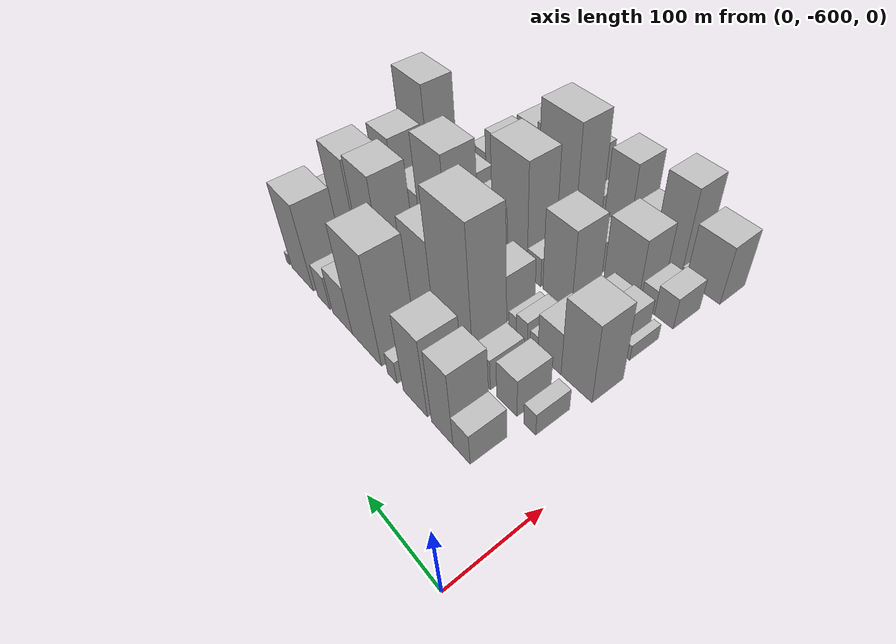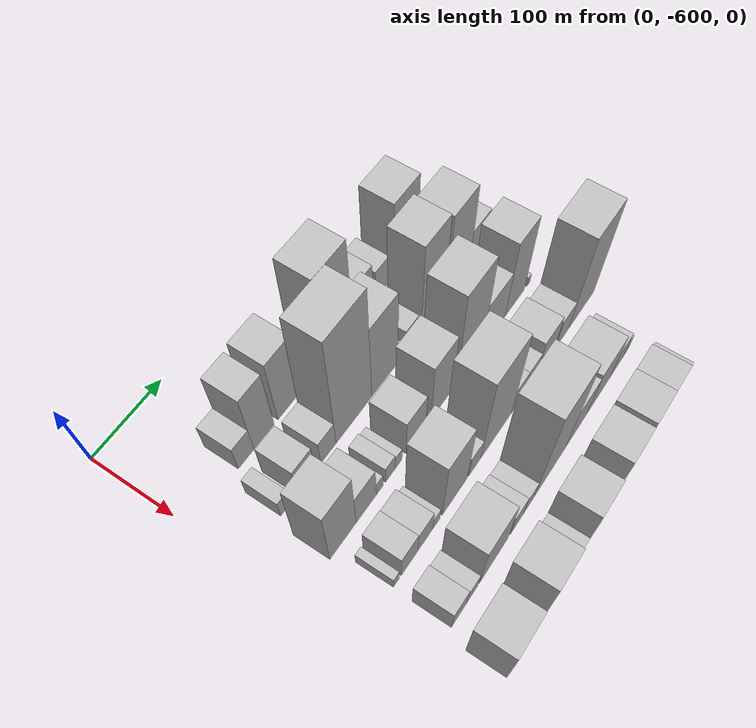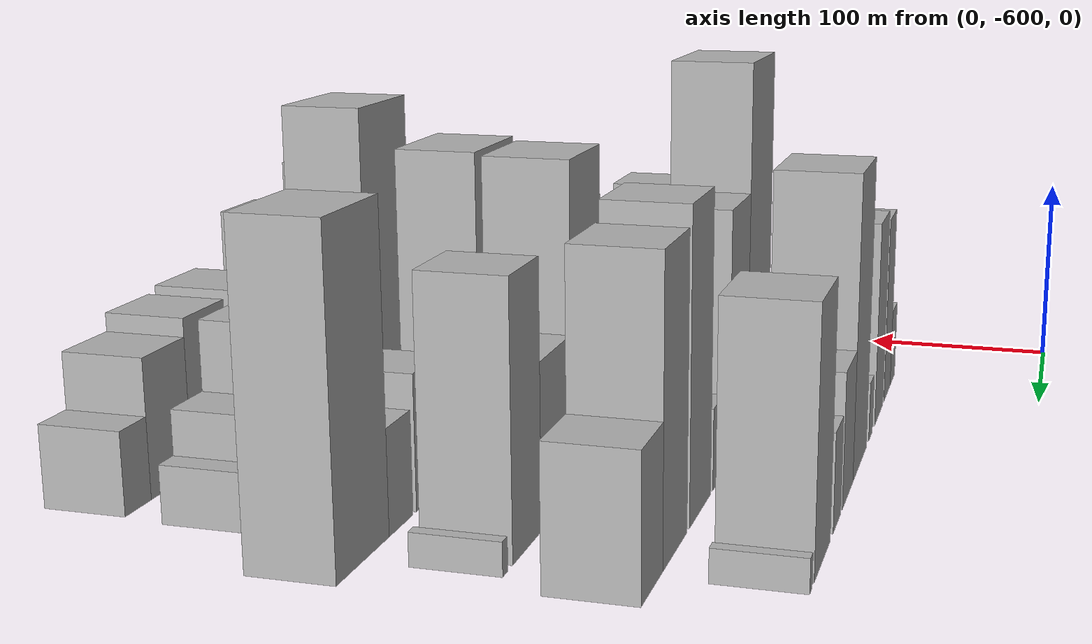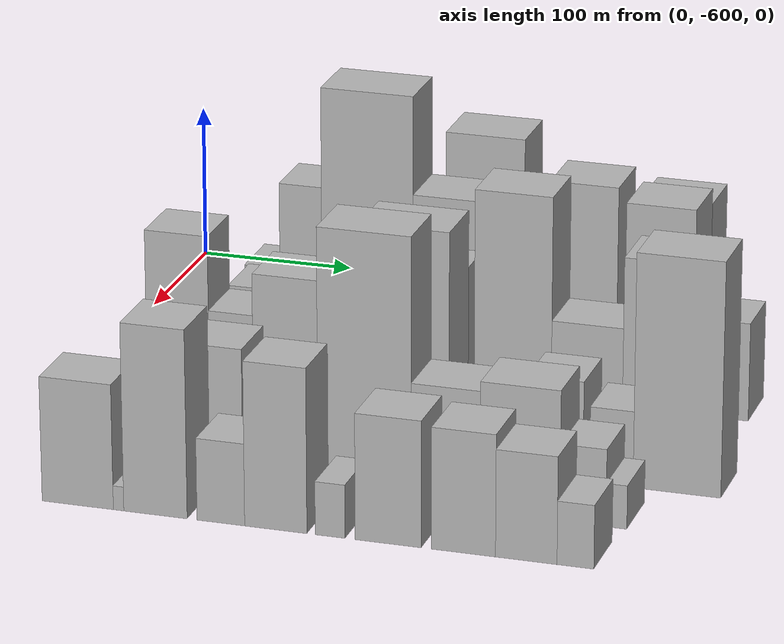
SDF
<sdf version="1.6">
 <world name="default">
  <model name="building_11">
   <static>1</static>
   <pose>100.0000 -520.0015 0 0.000000 0.000000 0.000000</pose>
   <link name="link">
    <pose>0 0 21.00 0 0 0</pose>
    <collision name="collision"><geometry><box><size>40.0000 23.5197 42.0000</size></box></geometry></collision>
    <visual name="visual">
     <cast_shadows>0</cast_shadows>
     <geometry><box><size>40.0000 23.5197 42.0000</size></box></geometry>
     <material>
      <script>
       <uri>model://HANNAS_wall/materials/scripts</uri>
       <uri>model://HANNAS_wall/materials/textures</uri>
       <name>vrc/HANNAS_wall</name>
      </script>
     </material>
    </visual>
   </link>
  </model>
  <model name="building_12">
   <static>1</static>
   <pose>100.0000 -492.8149 0 0.000000 0.000000 0.000000</pose>
   <link name="link">
    <pose>0 0 49.50 0 0 0</pose>
    <collision name="collision"><geometry><box><size>40.0000 30.8535 99.0000</size></box></geometry></collision>
    <visual name="visual">
     <cast_shadows>0</cast_shadows>
     <geometry><box><size>40.0000 30.8535 99.0000</size></box></geometry>
     <material>
      <script>
       <uri>model://HANNAS_wall/materials/scripts</uri>
       <uri>model://HANNAS_wall/materials/textures</uri>
       <name>vrc/HANNAS_wall</name>
      </script>
     </material>
    </visual>
   </link>
  </model>
  <model name="building_13">
   <static>1</static>
   <pose>100.0000 -452.9335 0 0.000000 0.000000 0.000000</pose>
   <link name="link">
    <pose>0 0 52.50 0 0 0</pose>
    <collision name="collision"><geometry><box><size>40.0000 36.9093 105.0000</size></box></geometry></collision>
    <visual name="visual">
     <cast_shadows>0</cast_shadows>
     <geometry><box><size>40.0000 36.9093 105.0000</size></box></geometry>
     <material>
      <script>
       <uri>model://HANNAS_wall/materials/scripts</uri>
       <uri>model://HANNAS_wall/materials/textures</uri>
       <name>vrc/HANNAS_wall</name>
      </script>
     </material>
    </visual>
   </link>
  </model>
  <model name="building_14">
   <static>1</static>
   <pose>100.0000 -416.7307 0 0.000000 0.000000 0.000000</pose>
   <link name="link">
    <pose>0 0 15.00 0 0 0</pose>
    <collision name="collision"><geometry><box><size>40.0000 15.4963 30.0000</size></box></geometry></collision>
    <visual name="visual">
     <cast_shadows>0</cast_shadows>
     <geometry><box><size>40.0000 15.4963 30.0000</size></box></geometry>
     <material>
      <script>
       <uri>model://HANNAS_wall/materials/scripts</uri>
       <uri>model://HANNAS_wall/materials/textures</uri>
       <name>vrc/HANNAS_wall</name>
      </script>
     </material>
    </visual>
   </link>
  </model>
  <model name="building_15">
   <static>1</static>
   <pose>100.0000 -373.5978 0 0.000000 0.000000 0.000000</pose>
   <link name="link">
    <pose>0 0 72.00 0 0 0</pose>
    <collision name="collision"><geometry><box><size>40.0000 50.7695 144.0000</size></box></geometry></collision>
    <visual name="visual">
     <cast_shadows>0</cast_shadows>
     <geometry><box><size>40.0000 50.7695 144.0000</size></box></geometry>
     <material>
      <script>
       <uri>model://HANNAS_wall/materials/scripts</uri>
       <uri>model://HANNAS_wall/materials/textures</uri>
       <name>vrc/HANNAS_wall</name>
      </script>
     </material>
    </visual>
   </link>
  </model>
  <model name="building_16">
   <static>1</static>
   <pose>100.0000 -330.0383 0 0.000000 0.000000 0.000000</pose>
   <link name="link">
    <pose>0 0 31.50 0 0 0</pose>
    <collision name="collision"><geometry><box><size>40.0000 36.3495 63.0000</size></box></geometry></collision>
    <visual name="visual">
     <cast_shadows>0</cast_shadows>
     <geometry><box><size>40.0000 36.3495 63.0000</size></box></geometry>
     <material>
      <script>
       <uri>model://HANNAS_wall/materials/scripts</uri>
       <uri>model://HANNAS_wall/materials/textures</uri>
       <name>vrc/HANNAS_wall</name>
      </script>
     </material>
    </visual>
   </link>
  </model>
  <model name="building_17">
   <static>1</static>
   <pose>100.0000 -294.9003 0 0.000000 0.000000 0.000000</pose>
   <link name="link">
    <pose>0 0 22.50 0 0 0</pose>
    <collision name="collision"><geometry><box><size>40.0000 23.9264 45.0000</size></box></geometry></collision>
    <visual name="visual">
     <cast_shadows>0</cast_shadows>
     <geometry><box><size>40.0000 23.9264 45.0000</size></box></geometry>
     <material>
      <script>
       <uri>model://HANNAS_wall/materials/scripts</uri>
       <uri>model://HANNAS_wall/materials/textures</uri>
       <name>vrc/HANNAS_wall</name>
      </script>
     </material>
    </visual>
   </link>
  </model>
  <model name="building_18">
   <static>1</static>
   <pose>100.0000 -251.7441 0 0.000000 0.000000 0.000000</pose>
   <link name="link">
    <pose>0 0 57.00 0 0 0</pose>
    <collision name="collision"><geometry><box><size>40.0000 44.3859 114.0000</size></box></geometry></collision>
    <visual name="visual">
     <cast_shadows>0</cast_shadows>
     <geometry><box><size>40.0000 44.3859 114.0000</size></box></geometry>
     <material>
      <script>
       <uri>model://HANNAS_wall/materials/scripts</uri>
       <uri>model://HANNAS_wall/materials/textures</uri>
       <name>vrc/HANNAS_wall</name>
      </script>
     </material>
    </visual>
   </link>
  </model>
  <model name="building_19">
   <static>1</static>
   <pose>100.0000 -221.4187 0 0.000000 0.000000 0.000000</pose>
   <link name="link">
    <pose>0 0 7.50 0 0 0</pose>
    <collision name="collision"><geometry><box><size>40.0000 6.2650 15.0000</size></box></geometry></collision>
    <visual name="visual">
     <cast_shadows>0</cast_shadows>
     <geometry><box><size>40.0000 6.2650 15.0000</size></box></geometry>
     <material>
      <script>
       <uri>model://HANNAS_wall/materials/scripts</uri>
       <uri>model://HANNAS_wall/materials/textures</uri>
       <name>vrc/HANNAS_wall</name>
      </script>
     </material>
    </visual>
   </link>
  </model>
  <model name="building_62">
   <static>1</static>
   <pose>160.0000 -538.5792 0 0.000000 0.000000 0.000000</pose>
   <link name="link">
    <pose>0 0 15.00 0 0 0</pose>
    <collision name="collision"><geometry><box><size>40.0000 15.5419 30.0000</size></box></geometry></collision>
    <visual name="visual">
     <cast_shadows>0</cast_shadows>
     <geometry><box><size>40.0000 15.5419 30.0000</size></box></geometry>
     <material>
      <script>
       <uri>model://HANNAS_wall/materials/scripts</uri>
       <uri>model://HANNAS_wall/materials/textures</uri>
       <name>vrc/HANNAS_wall</name>
      </script>
     </material>
    </visual>
   </link>
  </model>
  <model name="building_63">
   <static>1</static>
   <pose>160.0000 -507.8582 0 0.000000 0.000000 0.000000</pose>
   <link name="link">
    <pose>0 0 25.50 0 0 0</pose>
    <collision name="collision"><geometry><box><size>40.0000 27.9001 51.0000</size></box></geometry></collision>
    <visual name="visual">
     <cast_shadows>0</cast_shadows>
     <geometry><box><size>40.0000 27.9001 51.0000</size></box></geometry>
     <material>
      <script>
       <uri>model://HANNAS_wall/materials/scripts</uri>
       <uri>model://HANNAS_wall/materials/textures</uri>
       <name>vrc/HANNAS_wall</name>
      </script>
     </material>
    </visual>
   </link>
  </model>
  <model name="building_64">
   <static>1</static>
   <pose>160.0000 -472.8060 0 0.000000 0.000000 0.000000</pose>
   <link name="link">
    <pose>0 0 21.00 0 0 0</pose>
    <collision name="collision"><geometry><box><size>40.0000 24.2043 42.0000</size></box></geometry></collision>
    <visual name="visual">
     <cast_shadows>0</cast_shadows>
     <geometry><box><size>40.0000 24.2043 42.0000</size></box></geometry>
     <material>
      <script>
       <uri>model://HANNAS_wall/materials/scripts</uri>
       <uri>model://HANNAS_wall/materials/textures</uri>
       <name>vrc/HANNAS_wall</name>
      </script>
     </material>
    </visual>
   </link>
  </model>
  <model name="building_65">
   <static>1</static>
   <pose>160.0000 -431.2736 0 0.000000 0.000000 0.000000</pose>
   <link name="link">
    <pose>0 0 93.00 0 0 0</pose>
    <collision name="collision"><geometry><box><size>40.0000 58.8605 186.0000</size></box></geometry></collision>
    <visual name="visual">
     <cast_shadows>0</cast_shadows>
     <geometry><box><size>40.0000 58.8605 186.0000</size></box></geometry>
     <material>
      <script>
       <uri>model://HANNAS_wall/materials/scripts</uri>
       <uri>model://HANNAS_wall/materials/textures</uri>
       <name>vrc/HANNAS_wall</name>
      </script>
     </material>
    </visual>
   </link>
  </model>
  <model name="building_66">
   <static>1</static>
   <pose>160.0000 -379.3905 0 0.000000 0.000000 0.000000</pose>
   <link name="link">
    <pose>0 0 61.50 0 0 0</pose>
    <collision name="collision"><geometry><box><size>40.0000 44.9057 123.0000</size></box></geometry></collision>
    <visual name="visual">
     <cast_shadows>0</cast_shadows>
     <geometry><box><size>40.0000 44.9057 123.0000</size></box></geometry>
     <material>
      <script>
       <uri>model://HANNAS_wall/materials/scripts</uri>
       <uri>model://HANNAS_wall/materials/textures</uri>
       <name>vrc/HANNAS_wall</name>
      </script>
     </material>
    </visual>
   </link>
  </model>
  <model name="building_67">
   <static>1</static>
   <pose>160.0000 -352.0863 0 0.000000 0.000000 0.000000</pose>
   <link name="link">
    <pose>0 0 12.00 0 0 0</pose>
    <collision name="collision"><geometry><box><size>40.0000 9.7026 24.0000</size></box></geometry></collision>
    <visual name="visual">
     <cast_shadows>0</cast_shadows>
     <geometry><box><size>40.0000 9.7026 24.0000</size></box></geometry>
     <material>
      <script>
       <uri>model://HANNAS_wall/materials/scripts</uri>
       <uri>model://HANNAS_wall/materials/textures</uri>
       <name>vrc/HANNAS_wall</name>
      </script>
     </material>
    </visual>
   </link>
  </model>
  <model name="building_68">
   <static>1</static>
   <pose>160.0000 -331.8195 0 0.000000 0.000000 0.000000</pose>
   <link name="link">
    <pose>0 0 19.50 0 0 0</pose>
    <collision name="collision"><geometry><box><size>40.0000 22.8311 39.0000</size></box></geometry></collision>
    <visual name="visual">
     <cast_shadows>0</cast_shadows>
     <geometry><box><size>40.0000 22.8311 39.0000</size></box></geometry>
     <material>
      <script>
       <uri>model://HANNAS_wall/materials/scripts</uri>
       <uri>model://HANNAS_wall/materials/textures</uri>
       <name>vrc/HANNAS_wall</name>
      </script>
     </material>
    </visual>
   </link>
  </model>
  <model name="building_69">
   <static>1</static>
   <pose>160.0000 -294.0380 0 0.000000 0.000000 0.000000</pose>
   <link name="link">
    <pose>0 0 70.50 0 0 0</pose>
    <collision name="collision"><geometry><box><size>40.0000 42.7319 141.0000</size></box></geometry></collision>
    <visual name="visual">
     <cast_shadows>0</cast_shadows>
     <geometry><box><size>40.0000 42.7319 141.0000</size></box></geometry>
     <material>
      <script>
       <uri>model://HANNAS_wall/materials/scripts</uri>
       <uri>model://HANNAS_wall/materials/textures</uri>
       <name>vrc/HANNAS_wall</name>
      </script>
     </material>
    </visual>
   </link>
  </model>
  <model name="building_70">
   <static>1</static>
   <pose>160.0000 -246.0291 0 0.000000 0.000000 0.000000</pose>
   <link name="link">
    <pose>0 0 66.00 0 0 0</pose>
    <collision name="collision"><geometry><box><size>40.0000 43.2858 132.0000</size></box></geometry></collision>
    <visual name="visual">
     <cast_shadows>0</cast_shadows>
     <geometry><box><size>40.0000 43.2858 132.0000</size></box></geometry>
     <material>
      <script>
       <uri>model://HANNAS_wall/materials/scripts</uri>
       <uri>model://HANNAS_wall/materials/textures</uri>
       <name>vrc/HANNAS_wall</name>
      </script>
     </material>
    </visual>
   </link>
  </model>
  <model name="building_71">
   <static>1</static>
   <pose>160.0000 -207.0474 0 0.000000 0.000000 0.000000</pose>
   <link name="link">
    <pose>0 0 31.50 0 0 0</pose>
    <collision name="collision"><geometry><box><size>40.0000 34.6776 63.0000</size></box></geometry></collision>
    <visual name="visual">
     <cast_shadows>0</cast_shadows>
     <geometry><box><size>40.0000 34.6776 63.0000</size></box></geometry>
     <material>
      <script>
       <uri>model://HANNAS_wall/materials/scripts</uri>
       <uri>model://HANNAS_wall/materials/textures</uri>
       <name>vrc/HANNAS_wall</name>
      </script>
     </material>
    </visual>
   </link>
  </model>
  <model name="building_114">
   <static>1</static>
   <pose>220.0000 -534.1044 0 0.000000 0.000000 0.000000</pose>
   <link name="link">
    <pose>0 0 52.50 0 0 0</pose>
    <collision name="collision"><geometry><box><size>40.0000 40.4031 105.0000</size></box></geometry></collision>
    <visual name="visual">
     <cast_shadows>0</cast_shadows>
     <geometry><box><size>40.0000 40.4031 105.0000</size></box></geometry>
     <material>
      <script>
       <uri>model://HANNAS_wall/materials/scripts</uri>
       <uri>model://HANNAS_wall/materials/textures</uri>
       <name>vrc/HANNAS_wall</name>
      </script>
     </material>
    </visual>
   </link>
  </model>
  <model name="building_115">
   <static>1</static>
   <pose>220.0000 -498.0451 0 0.000000 0.000000 0.000000</pose>
   <link name="link">
    <pose>0 0 28.50 0 0 0</pose>
    <collision name="collision"><geometry><box><size>40.0000 31.7157 57.0000</size></box></geometry></collision>
    <visual name="visual">
     <cast_shadows>0</cast_shadows>
     <geometry><box><size>40.0000 31.7157 57.0000</size></box></geometry>
     <material>
      <script>
       <uri>model://HANNAS_wall/materials/scripts</uri>
       <uri>model://HANNAS_wall/materials/textures</uri>
       <name>vrc/HANNAS_wall</name>
      </script>
     </material>
    </visual>
   </link>
  </model>
  <model name="building_116">
   <static>1</static>
   <pose>220.0000 -476.6513 0 0.000000 0.000000 0.000000</pose>
   <link name="link">
    <pose>0 0 12.00 0 0 0</pose>
    <collision name="collision"><geometry><box><size>40.0000 11.0718 24.0000</size></box></geometry></collision>
    <visual name="visual">
     <cast_shadows>0</cast_shadows>
     <geometry><box><size>40.0000 11.0718 24.0000</size></box></geometry>
     <material>
      <script>
       <uri>model://HANNAS_wall/materials/scripts</uri>
       <uri>model://HANNAS_wall/materials/textures</uri>
       <name>vrc/HANNAS_wall</name>
      </script>
     </material>
    </visual>
   </link>
  </model>
  <model name="building_117">
   <static>1</static>
   <pose>220.0000 -459.2094 0 0.000000 0.000000 0.000000</pose>
   <link name="link">
    <pose>0 0 15.00 0 0 0</pose>
    <collision name="collision"><geometry><box><size>40.0000 15.8121 30.0000</size></box></geometry></collision>
    <visual name="visual">
     <cast_shadows>0</cast_shadows>
     <geometry><box><size>40.0000 15.8121 30.0000</size></box></geometry>
     <material>
      <script>
       <uri>model://HANNAS_wall/materials/scripts</uri>
       <uri>model://HANNAS_wall/materials/textures</uri>
       <name>vrc/HANNAS_wall</name>
      </script>
     </material>
    </visual>
   </link>
  </model>
  <model name="building_118">
   <static>1</static>
   <pose>220.0000 -445.6467 0 0.000000 0.000000 0.000000</pose>
   <link name="link">
    <pose>0 0 12.00 0 0 0</pose>
    <collision name="collision"><geometry><box><size>40.0000 11.3134 24.0000</size></box></geometry></collision>
    <visual name="visual">
     <cast_shadows>0</cast_shadows>
     <geometry><box><size>40.0000 11.3134 24.0000</size></box></geometry>
     <material>
      <script>
       <uri>model://HANNAS_wall/materials/scripts</uri>
       <uri>model://HANNAS_wall/materials/textures</uri>
       <name>vrc/HANNAS_wall</name>
      </script>
     </material>
    </visual>
   </link>
  </model>
  <model name="building_119">
   <static>1</static>
   <pose>220.0000 -416.3813 0 0.000000 0.000000 0.000000</pose>
   <link name="link">
    <pose>0 0 31.50 0 0 0</pose>
    <collision name="collision"><geometry><box><size>40.0000 33.2174 63.0000</size></box></geometry></collision>
    <visual name="visual">
     <cast_shadows>0</cast_shadows>
     <geometry><box><size>40.0000 33.2174 63.0000</size></box></geometry>
     <material>
      <script>
       <uri>model://HANNAS_wall/materials/scripts</uri>
       <uri>model://HANNAS_wall/materials/textures</uri>
       <name>vrc/HANNAS_wall</name>
      </script>
     </material>
    </visual>
   </link>
  </model>
  <model name="building_120">
   <static>1</static>
   <pose>220.0000 -371.4039 0 0.000000 0.000000 0.000000</pose>
   <link name="link">
    <pose>0 0 49.50 0 0 0</pose>
    <collision name="collision"><geometry><box><size>40.0000 38.7374 99.0000</size></box></geometry></collision>
    <visual name="visual">
     <cast_shadows>0</cast_shadows>
     <geometry><box><size>40.0000 38.7374 99.0000</size></box></geometry>
     <material>
      <script>
       <uri>model://HANNAS_wall/materials/scripts</uri>
       <uri>model://HANNAS_wall/materials/textures</uri>
       <name>vrc/HANNAS_wall</name>
      </script>
     </material>
    </visual>
   </link>
  </model>
  <model name="building_121">
   <static>1</static>
   <pose>220.0000 -321.0143 0 0.000000 0.000000 0.000000</pose>
   <link name="link">
    <pose>0 0 76.50 0 0 0</pose>
    <collision name="collision"><geometry><box><size>40.0000 48.0419 153.0000</size></box></geometry></collision>
    <visual name="visual">
     <cast_shadows>0</cast_shadows>
     <geometry><box><size>40.0000 48.0419 153.0000</size></box></geometry>
     <material>
      <script>
       <uri>model://HANNAS_wall/materials/scripts</uri>
       <uri>model://HANNAS_wall/materials/textures</uri>
       <name>vrc/HANNAS_wall</name>
      </script>
     </material>
    </visual>
   </link>
  </model>
  <model name="building_122">
   <static>1</static>
   <pose>220.0000 -274.9451 0 0.000000 0.000000 0.000000</pose>
   <link name="link">
    <pose>0 0 37.50 0 0 0</pose>
    <collision name="collision"><geometry><box><size>40.0000 44.0965 75.0000</size></box></geometry></collision>
    <visual name="visual">
     <cast_shadows>0</cast_shadows>
     <geometry><box><size>40.0000 44.0965 75.0000</size></box></geometry>
     <material>
      <script>
       <uri>model://HANNAS_wall/materials/scripts</uri>
       <uri>model://HANNAS_wall/materials/textures</uri>
       <name>vrc/HANNAS_wall</name>
      </script>
     </material>
    </visual>
   </link>
  </model>
  <model name="building_123">
   <static>1</static>
   <pose>220.0000 -233.9600 0 0.000000 0.000000 0.000000</pose>
   <link name="link">
    <pose>0 0 60.00 0 0 0</pose>
    <collision name="collision"><geometry><box><size>40.0000 37.8736 120.0000</size></box></geometry></collision>
    <visual name="visual">
     <cast_shadows>0</cast_shadows>
     <geometry><box><size>40.0000 37.8736 120.0000</size></box></geometry>
     <material>
      <script>
       <uri>model://HANNAS_wall/materials/scripts</uri>
       <uri>model://HANNAS_wall/materials/textures</uri>
       <name>vrc/HANNAS_wall</name>
      </script>
     </material>
    </visual>
   </link>
  </model>
  <model name="building_124">
   <static>1</static>
   <pose>220.0000 -205.8861 0 0.000000 0.000000 0.000000</pose>
   <link name="link">
    <pose>0 0 7.50 0 0 0</pose>
    <collision name="collision"><geometry><box><size>40.0000 6.2743 15.0000</size></box></geometry></collision>
    <visual name="visual">
     <cast_shadows>0</cast_shadows>
     <geometry><box><size>40.0000 6.2743 15.0000</size></box></geometry>
     <material>
      <script>
       <uri>model://HANNAS_wall/materials/scripts</uri>
       <uri>model://HANNAS_wall/materials/textures</uri>
       <name>vrc/HANNAS_wall</name>
      </script>
     </material>
    </visual>
   </link>
  </model>
  <model name="building_165">
   <static>1</static>
   <pose>280.0000 -539.0606 0 0.000000 0.000000 0.000000</pose>
   <link name="link">
    <pose>0 0 10.50 0 0 0</pose>
    <collision name="collision"><geometry><box><size>40.0000 9.1985 21.0000</size></box></geometry></collision>
    <visual name="visual">
     <cast_shadows>0</cast_shadows>
     <geometry><box><size>40.0000 9.1985 21.0000</size></box></geometry>
     <material>
      <script>
       <uri>model://HANNAS_wall/materials/scripts</uri>
       <uri>model://HANNAS_wall/materials/textures</uri>
       <name>vrc/HANNAS_wall</name>
      </script>
     </material>
    </visual>
   </link>
  </model>
  <model name="building_166">
   <static>1</static>
   <pose>280.0000 -518.3628 0 0.000000 0.000000 0.000000</pose>
   <link name="link">
    <pose>0 0 22.50 0 0 0</pose>
    <collision name="collision"><geometry><box><size>40.0000 26.1971 45.0000</size></box></geometry></collision>
    <visual name="visual">
     <cast_shadows>0</cast_shadows>
     <geometry><box><size>40.0000 26.1971 45.0000</size></box></geometry>
     <material>
      <script>
       <uri>model://HANNAS_wall/materials/scripts</uri>
       <uri>model://HANNAS_wall/materials/textures</uri>
       <name>vrc/HANNAS_wall</name>
      </script>
     </material>
    </visual>
   </link>
  </model>
  <model name="building_167">
   <static>1</static>
   <pose>280.0000 -493.0035 0 0.000000 0.000000 0.000000</pose>
   <link name="link">
    <pose>0 0 21.00 0 0 0</pose>
    <collision name="collision"><geometry><box><size>40.0000 24.5216 42.0000</size></box></geometry></collision>
    <visual name="visual">
     <cast_shadows>0</cast_shadows>
     <geometry><box><size>40.0000 24.5216 42.0000</size></box></geometry>
     <material>
      <script>
       <uri>model://HANNAS_wall/materials/scripts</uri>
       <uri>model://HANNAS_wall/materials/textures</uri>
       <name>vrc/HANNAS_wall</name>
      </script>
     </material>
    </visual>
   </link>
  </model>
  <model name="building_168">
   <static>1</static>
   <pose>280.0000 -474.8378 0 0.000000 0.000000 0.000000</pose>
   <link name="link">
    <pose>0 0 12.00 0 0 0</pose>
    <collision name="collision"><geometry><box><size>40.0000 11.8099 24.0000</size></box></geometry></collision>
    <visual name="visual">
     <cast_shadows>0</cast_shadows>
     <geometry><box><size>40.0000 11.8099 24.0000</size></box></geometry>
     <material>
      <script>
       <uri>model://HANNAS_wall/materials/scripts</uri>
       <uri>model://HANNAS_wall/materials/textures</uri>
       <name>vrc/HANNAS_wall</name>
      </script>
     </material>
    </visual>
   </link>
  </model>
  <model name="building_169">
   <static>1</static>
   <pose>280.0000 -443.8550 0 0.000000 0.000000 0.000000</pose>
   <link name="link">
    <pose>0 0 54.00 0 0 0</pose>
    <collision name="collision"><geometry><box><size>40.0000 42.1556 108.0000</size></box></geometry></collision>
    <visual name="visual">
     <cast_shadows>0</cast_shadows>
     <geometry><box><size>40.0000 42.1556 108.0000</size></box></geometry>
     <material>
      <script>
       <uri>model://HANNAS_wall/materials/scripts</uri>
       <uri>model://HANNAS_wall/materials/textures</uri>
       <name>vrc/HANNAS_wall</name>
      </script>
     </material>
    </visual>
   </link>
  </model>
  <model name="building_170">
   <static>1</static>
   <pose>280.0000 -409.1707 0 0.000000 0.000000 0.000000</pose>
   <link name="link">
    <pose>0 0 19.50 0 0 0</pose>
    <collision name="collision"><geometry><box><size>40.0000 21.2130 39.0000</size></box></geometry></collision>
    <visual name="visual">
     <cast_shadows>0</cast_shadows>
     <geometry><box><size>40.0000 21.2130 39.0000</size></box></geometry>
     <material>
      <script>
       <uri>model://HANNAS_wall/materials/scripts</uri>
       <uri>model://HANNAS_wall/materials/textures</uri>
       <name>vrc/HANNAS_wall</name>
      </script>
     </material>
    </visual>
   </link>
  </model>
  <model name="building_171">
   <static>1</static>
   <pose>280.0000 -370.7430 0 0.000000 0.000000 0.000000</pose>
   <link name="link">
    <pose>0 0 73.50 0 0 0</pose>
    <collision name="collision"><geometry><box><size>40.0000 55.6425 147.0000</size></box></geometry></collision>
    <visual name="visual">
     <cast_shadows>0</cast_shadows>
     <geometry><box><size>40.0000 55.6425 147.0000</size></box></geometry>
     <material>
      <script>
       <uri>model://HANNAS_wall/materials/scripts</uri>
       <uri>model://HANNAS_wall/materials/textures</uri>
       <name>vrc/HANNAS_wall</name>
      </script>
     </material>
    </visual>
   </link>
  </model>
  <model name="building_172">
   <static>1</static>
   <pose>280.0000 -330.7039 0 0.000000 0.000000 0.000000</pose>
   <link name="link">
    <pose>0 0 22.50 0 0 0</pose>
    <collision name="collision"><geometry><box><size>40.0000 24.4357 45.0000</size></box></geometry></collision>
    <visual name="visual">
     <cast_shadows>0</cast_shadows>
     <geometry><box><size>40.0000 24.4357 45.0000</size></box></geometry>
     <material>
      <script>
       <uri>model://HANNAS_wall/materials/scripts</uri>
       <uri>model://HANNAS_wall/materials/textures</uri>
       <name>vrc/HANNAS_wall</name>
      </script>
     </material>
    </visual>
   </link>
  </model>
  <model name="building_173">
   <static>1</static>
   <pose>280.0000 -306.7892 0 0.000000 0.000000 0.000000</pose>
   <link name="link">
    <pose>0 0 22.50 0 0 0</pose>
    <collision name="collision"><geometry><box><size>40.0000 23.3936 45.0000</size></box></geometry></collision>
    <visual name="visual">
     <cast_shadows>0</cast_shadows>
     <geometry><box><size>40.0000 23.3936 45.0000</size></box></geometry>
     <material>
      <script>
       <uri>model://HANNAS_wall/materials/scripts</uri>
       <uri>model://HANNAS_wall/materials/textures</uri>
       <name>vrc/HANNAS_wall</name>
      </script>
     </material>
    </visual>
   </link>
  </model>
  <model name="building_174">
   <static>1</static>
   <pose>280.0000 -277.8731 0 0.000000 0.000000 0.000000</pose>
   <link name="link">
    <pose>0 0 31.50 0 0 0</pose>
    <collision name="collision"><geometry><box><size>40.0000 34.4386 63.0000</size></box></geometry></collision>
    <visual name="visual">
     <cast_shadows>0</cast_shadows>
     <geometry><box><size>40.0000 34.4386 63.0000</size></box></geometry>
     <material>
      <script>
       <uri>model://HANNAS_wall/materials/scripts</uri>
       <uri>model://HANNAS_wall/materials/textures</uri>
       <name>vrc/HANNAS_wall</name>
      </script>
     </material>
    </visual>
   </link>
  </model>
  <model name="building_175">
   <static>1</static>
   <pose>280.0000 -243.4254 0 0.000000 0.000000 0.000000</pose>
   <link name="link">
    <pose>0 0 24.00 0 0 0</pose>
    <collision name="collision"><geometry><box><size>40.0000 26.4569 48.0000</size></box></geometry></collision>
    <visual name="visual">
     <cast_shadows>0</cast_shadows>
     <geometry><box><size>40.0000 26.4569 48.0000</size></box></geometry>
     <material>
      <script>
       <uri>model://HANNAS_wall/materials/scripts</uri>
       <uri>model://HANNAS_wall/materials/textures</uri>
       <name>vrc/HANNAS_wall</name>
      </script>
     </material>
    </visual>
   </link>
  </model>
  <model name="building_176">
   <static>1</static>
   <pose>280.0000 -203.7505 0 0.000000 0.000000 0.000000</pose>
   <link name="link">
    <pose>0 0 73.50 0 0 0</pose>
    <collision name="collision"><geometry><box><size>40.0000 52.8928 147.0000</size></box></geometry></collision>
    <visual name="visual">
     <cast_shadows>0</cast_shadows>
     <geometry><box><size>40.0000 52.8928 147.0000</size></box></geometry>
     <material>
      <script>
       <uri>model://HANNAS_wall/materials/scripts</uri>
       <uri>model://HANNAS_wall/materials/textures</uri>
       <name>vrc/HANNAS_wall</name>
      </script>
     </material>
    </visual>
   </link>
  </model>
  <model name="building_216">
   <static>1</static>
   <pose>340.0000 -532.8525 0 0.000000 0.000000 0.000000</pose>
   <link name="link">
    <pose>0 0 21.00 0 0 0</pose>
    <collision name="collision"><geometry><box><size>40.0000 24.0890 42.0000</size></box></geometry></collision>
    <visual name="visual">
     <cast_shadows>0</cast_shadows>
     <geometry><box><size>40.0000 24.0890 42.0000</size></box></geometry>
     <material>
      <script>
       <uri>model://HANNAS_wall/materials/scripts</uri>
       <uri>model://HANNAS_wall/materials/textures</uri>
       <name>vrc/HANNAS_wall</name>
      </script>
     </material>
    </visual>
   </link>
  </model>
  <model name="building_217">
   <static>1</static>
   <pose>340.0000 -511.5202 0 0.000000 0.000000 0.000000</pose>
   <link name="link">
    <pose>0 0 16.50 0 0 0</pose>
    <collision name="collision"><geometry><box><size>40.0000 18.5757 33.0000</size></box></geometry></collision>
    <visual name="visual">
     <cast_shadows>0</cast_shadows>
     <geometry><box><size>40.0000 18.5757 33.0000</size></box></geometry>
     <material>
      <script>
       <uri>model://HANNAS_wall/materials/scripts</uri>
       <uri>model://HANNAS_wall/materials/textures</uri>
       <name>vrc/HANNAS_wall</name>
      </script>
     </material>
    </visual>
   </link>
  </model>
  <model name="building_218">
   <static>1</static>
   <pose>340.0000 -475.2425 0 0.000000 0.000000 0.000000</pose>
   <link name="link">
    <pose>0 0 42.00 0 0 0</pose>
    <collision name="collision"><geometry><box><size>40.0000 47.9797 84.0000</size></box></geometry></collision>
    <visual name="visual">
     <cast_shadows>0</cast_shadows>
     <geometry><box><size>40.0000 47.9797 84.0000</size></box></geometry>
     <material>
      <script>
       <uri>model://HANNAS_wall/materials/scripts</uri>
       <uri>model://HANNAS_wall/materials/textures</uri>
       <name>vrc/HANNAS_wall</name>
      </script>
     </material>
    </visual>
   </link>
  </model>
  <model name="building_219">
   <static>1</static>
   <pose>340.0000 -435.1528 0 0.000000 0.000000 0.000000</pose>
   <link name="link">
    <pose>0 0 21.00 0 0 0</pose>
    <collision name="collision"><geometry><box><size>40.0000 22.1997 42.0000</size></box></geometry></collision>
    <visual name="visual">
     <cast_shadows>0</cast_shadows>
     <geometry><box><size>40.0000 22.1997 42.0000</size></box></geometry>
     <material>
      <script>
       <uri>model://HANNAS_wall/materials/scripts</uri>
       <uri>model://HANNAS_wall/materials/textures</uri>
       <name>vrc/HANNAS_wall</name>
      </script>
     </material>
    </visual>
   </link>
  </model>
  <model name="building_220">
   <static>1</static>
   <pose>340.0000 -414.4388 0 0.000000 0.000000 0.000000</pose>
   <link name="link">
    <pose>0 0 18.00 0 0 0</pose>
    <collision name="collision"><geometry><box><size>40.0000 19.2283 36.0000</size></box></geometry></collision>
    <visual name="visual">
     <cast_shadows>0</cast_shadows>
     <geometry><box><size>40.0000 19.2283 36.0000</size></box></geometry>
     <material>
      <script>
       <uri>model://HANNAS_wall/materials/scripts</uri>
       <uri>model://HANNAS_wall/materials/textures</uri>
       <name>vrc/HANNAS_wall</name>
      </script>
     </material>
    </visual>
   </link>
  </model>
  <model name="building_221">
   <static>1</static>
   <pose>340.0000 -376.3103 0 0.000000 0.000000 0.000000</pose>
   <link name="link">
    <pose>0 0 82.50 0 0 0</pose>
    <collision name="collision"><geometry><box><size>40.0000 57.0288 165.0000</size></box></geometry></collision>
    <visual name="visual">
     <cast_shadows>0</cast_shadows>
     <geometry><box><size>40.0000 57.0288 165.0000</size></box></geometry>
     <material>
      <script>
       <uri>model://HANNAS_wall/materials/scripts</uri>
       <uri>model://HANNAS_wall/materials/textures</uri>
       <name>vrc/HANNAS_wall</name>
      </script>
     </material>
    </visual>
   </link>
  </model>
  <model name="building_222">
   <static>1</static>
   <pose>340.0000 -326.9419 0 0.000000 0.000000 0.000000</pose>
   <link name="link">
    <pose>0 0 37.50 0 0 0</pose>
    <collision name="collision"><geometry><box><size>40.0000 41.7080 75.0000</size></box></geometry></collision>
    <visual name="visual">
     <cast_shadows>0</cast_shadows>
     <geometry><box><size>40.0000 41.7080 75.0000</size></box></geometry>
     <material>
      <script>
       <uri>model://HANNAS_wall/materials/scripts</uri>
       <uri>model://HANNAS_wall/materials/textures</uri>
       <name>vrc/HANNAS_wall</name>
      </script>
     </material>
    </visual>
   </link>
  </model>
  <model name="building_223">
   <static>1</static>
   <pose>340.0000 -282.0660 0 0.000000 0.000000 0.000000</pose>
   <link name="link">
    <pose>0 0 40.50 0 0 0</pose>
    <collision name="collision"><geometry><box><size>40.0000 48.0437 81.0000</size></box></geometry></collision>
    <visual name="visual">
     <cast_shadows>0</cast_shadows>
     <geometry><box><size>40.0000 48.0437 81.0000</size></box></geometry>
     <material>
      <script>
       <uri>model://HANNAS_wall/materials/scripts</uri>
       <uri>model://HANNAS_wall/materials/textures</uri>
       <name>vrc/HANNAS_wall</name>
      </script>
     </material>
    </visual>
   </link>
  </model>
  <model name="building_224">
   <static>1</static>
   <pose>340.0000 -244.2890 0 0.000000 0.000000 0.000000</pose>
   <link name="link">
    <pose>0 0 24.00 0 0 0</pose>
    <collision name="collision"><geometry><box><size>40.0000 27.5103 48.0000</size></box></geometry></collision>
    <visual name="visual">
     <cast_shadows>0</cast_shadows>
     <geometry><box><size>40.0000 27.5103 48.0000</size></box></geometry>
     <material>
      <script>
       <uri>model://HANNAS_wall/materials/scripts</uri>
       <uri>model://HANNAS_wall/materials/textures</uri>
       <name>vrc/HANNAS_wall</name>
      </script>
     </material>
    </visual>
   </link>
  </model>
  <model name="building_225">
   <static>1</static>
   <pose>340.0000 -224.3206 0 0.000000 0.000000 0.000000</pose>
   <link name="link">
    <pose>0 0 13.50 0 0 0</pose>
    <collision name="collision"><geometry><box><size>40.0000 12.4264 27.0000</size></box></geometry></collision>
    <visual name="visual">
     <cast_shadows>0</cast_shadows>
     <geometry><box><size>40.0000 12.4264 27.0000</size></box></geometry>
     <material>
      <script>
       <uri>model://HANNAS_wall/materials/scripts</uri>
       <uri>model://HANNAS_wall/materials/textures</uri>
       <name>vrc/HANNAS_wall</name>
      </script>
     </material>
    </visual>
   </link>
  </model>
  <model name="building_267">
   <static>1</static>
   <pose>400.0000 -532.2468 0 0.000000 0.000000 0.000000</pose>
   <link name="link">
    <pose>0 0 39.00 0 0 0</pose>
    <collision name="collision"><geometry><box><size>40.0000 44.0987 78.0000</size></box></geometry></collision>
    <visual name="visual">
     <cast_shadows>0</cast_shadows>
     <geometry><box><size>40.0000 44.0987 78.0000</size></box></geometry>
     <material>
      <script>
       <uri>model://HANNAS_wall/materials/scripts</uri>
       <uri>model://HANNAS_wall/materials/textures</uri>
       <name>vrc/HANNAS_wall</name>
      </script>
     </material>
    </visual>
   </link>
  </model>
  <model name="building_268">
   <static>1</static>
   <pose>400.0000 -506.9734 0 0.000000 0.000000 0.000000</pose>
   <link name="link">
    <pose>0 0 7.50 0 0 0</pose>
    <collision name="collision"><geometry><box><size>40.0000 6.4481 15.0000</size></box></geometry></collision>
    <visual name="visual">
     <cast_shadows>0</cast_shadows>
     <geometry><box><size>40.0000 6.4481 15.0000</size></box></geometry>
     <material>
      <script>
       <uri>model://HANNAS_wall/materials/scripts</uri>
       <uri>model://HANNAS_wall/materials/textures</uri>
       <name>vrc/HANNAS_wall</name>
      </script>
     </material>
    </visual>
   </link>
  </model>
  <model name="building_269">
   <static>1</static>
   <pose>400.0000 -484.2646 0 0.000000 0.000000 0.000000</pose>
   <link name="link">
    <pose>0 0 58.50 0 0 0</pose>
    <collision name="collision"><geometry><box><size>40.0000 38.9694 117.0000</size></box></geometry></collision>
    <visual name="visual">
     <cast_shadows>0</cast_shadows>
     <geometry><box><size>40.0000 38.9694 117.0000</size></box></geometry>
     <material>
      <script>
       <uri>model://HANNAS_wall/materials/scripts</uri>
       <uri>model://HANNAS_wall/materials/textures</uri>
       <name>vrc/HANNAS_wall</name>
      </script>
     </material>
    </visual>
   </link>
  </model>
  <model name="building_270">
   <static>1</static>
   <pose>400.0000 -444.2499 0 0.000000 0.000000 0.000000</pose>
   <link name="link">
    <pose>0 0 25.50 0 0 0</pose>
    <collision name="collision"><geometry><box><size>40.0000 29.0601 51.0000</size></box></geometry></collision>
    <visual name="visual">
     <cast_shadows>0</cast_shadows>
     <geometry><box><size>40.0000 29.0601 51.0000</size></box></geometry>
     <material>
      <script>
       <uri>model://HANNAS_wall/materials/scripts</uri>
       <uri>model://HANNAS_wall/materials/textures</uri>
       <name>vrc/HANNAS_wall</name>
      </script>
     </material>
    </visual>
   </link>
  </model>
  <model name="building_271">
   <static>1</static>
   <pose>400.0000 -410.8538 0 0.000000 0.000000 0.000000</pose>
   <link name="link">
    <pose>0 0 51.00 0 0 0</pose>
    <collision name="collision"><geometry><box><size>40.0000 37.7321 102.0000</size></box></geometry></collision>
    <visual name="visual">
     <cast_shadows>0</cast_shadows>
     <geometry><box><size>40.0000 37.7321 102.0000</size></box></geometry>
     <material>
      <script>
       <uri>model://HANNAS_wall/materials/scripts</uri>
       <uri>model://HANNAS_wall/materials/textures</uri>
       <name>vrc/HANNAS_wall</name>
      </script>
     </material>
    </visual>
   </link>
  </model>
  <model name="building_272">
   <static>1</static>
   <pose>400.0000 -377.9844 0 0.000000 0.000000 0.000000</pose>
   <link name="link">
    <pose>0 0 16.50 0 0 0</pose>
    <collision name="collision"><geometry><box><size>40.0000 18.0066 33.0000</size></box></geometry></collision>
    <visual name="visual">
     <cast_shadows>0</cast_shadows>
     <geometry><box><size>40.0000 18.0066 33.0000</size></box></geometry>
     <material>
      <script>
       <uri>model://HANNAS_wall/materials/scripts</uri>
       <uri>model://HANNAS_wall/materials/textures</uri>
       <name>vrc/HANNAS_wall</name>
      </script>
     </material>
    </visual>
   </link>
  </model>
  <model name="building_273">
   <static>1</static>
   <pose>400.0000 -343.1584 0 0.000000 0.000000 0.000000</pose>
   <link name="link">
    <pose>0 0 39.00 0 0 0</pose>
    <collision name="collision"><geometry><box><size>40.0000 39.6454 78.0000</size></box></geometry></collision>
    <visual name="visual">
     <cast_shadows>0</cast_shadows>
     <geometry><box><size>40.0000 39.6454 78.0000</size></box></geometry>
     <material>
      <script>
       <uri>model://HANNAS_wall/materials/scripts</uri>
       <uri>model://HANNAS_wall/materials/textures</uri>
       <name>vrc/HANNAS_wall</name>
      </script>
     </material>
    </visual>
   </link>
  </model>
  <model name="building_274">
   <static>1</static>
   <pose>400.0000 -298.3274 0 0.000000 0.000000 0.000000</pose>
   <link name="link">
    <pose>0 0 37.50 0 0 0</pose>
    <collision name="collision"><geometry><box><size>40.0000 38.0168 75.0000</size></box></geometry></collision>
    <visual name="visual">
     <cast_shadows>0</cast_shadows>
     <geometry><box><size>40.0000 38.0168 75.0000</size></box></geometry>
     <material>
      <script>
       <uri>model://HANNAS_wall/materials/scripts</uri>
       <uri>model://HANNAS_wall/materials/textures</uri>
       <name>vrc/HANNAS_wall</name>
      </script>
     </material>
    </visual>
   </link>
  </model>
  <model name="building_275">
   <static>1</static>
   <pose>400.0000 -261.2037 0 0.000000 0.000000 0.000000</pose>
   <link name="link">
    <pose>0 0 33.00 0 0 0</pose>
    <collision name="collision"><geometry><box><size>40.0000 36.2306 66.0000</size></box></geometry></collision>
    <visual name="visual">
     <cast_shadows>0</cast_shadows>
     <geometry><box><size>40.0000 36.2306 66.0000</size></box></geometry>
     <material>
      <script>
       <uri>model://HANNAS_wall/materials/scripts</uri>
       <uri>model://HANNAS_wall/materials/textures</uri>
       <name>vrc/HANNAS_wall</name>
      </script>
     </material>
    </visual>
   </link>
  </model>
  <model name="building_276">
   <static>1</static>
   <pose>400.0000 -232.2951 0 0.000000 0.000000 0.000000</pose>
   <link name="link">
    <pose>0 0 19.50 0 0 0</pose>
    <collision name="collision"><geometry><box><size>40.0000 21.5865 39.0000</size></box></geometry></collision>
    <visual name="visual">
     <cast_shadows>0</cast_shadows>
     <geometry><box><size>40.0000 21.5865 39.0000</size></box></geometry>
     <material>
      <script>
       <uri>model://HANNAS_wall/materials/scripts</uri>
       <uri>model://HANNAS_wall/materials/textures</uri>
       <name>vrc/HANNAS_wall</name>
      </script>
     </material>
    </visual>
   </link>
  </model>
 </world>
</sdf>
